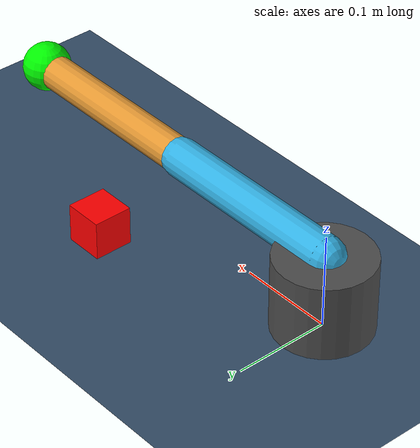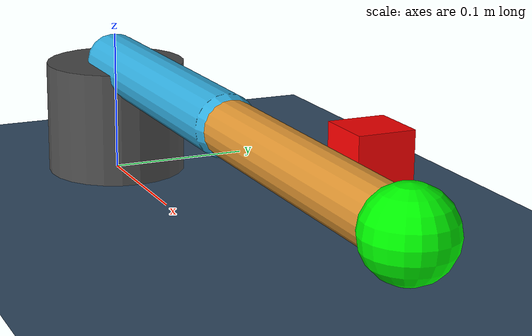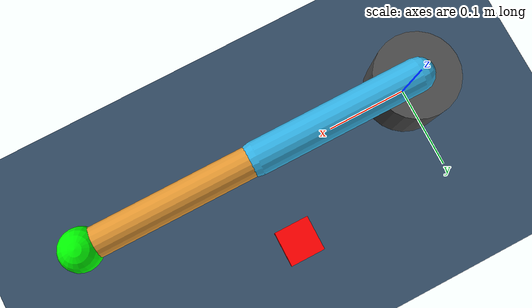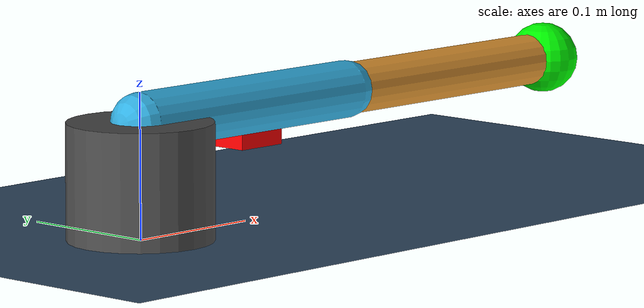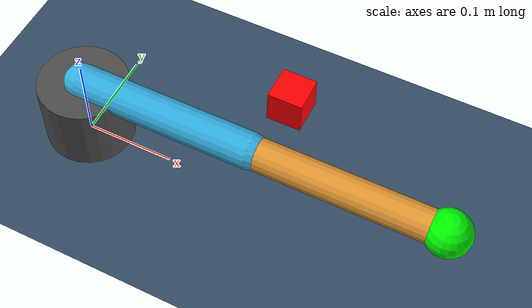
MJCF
<mujoco model="simple_reacher">
  <compiler angle="radian"/>
  <option gravity="0 0 -9.81" timestep="0.005"/>

  <visual>
    <headlight ambient="0.4 0.4 0.4" diffuse="0.8 0.8 0.8" specular="0.1 0.1 0.1"/>
  </visual>

  <worldbody>
    <light pos="0 0 2" dir="0 0 -1"/>

    <!-- พื้นตาราง -->
    <geom name="floor" type="plane" size="1 1 0.1" rgba="0.2 0.3 0.4 1" condim="3"/>

    <!-- กล่องเป้าหมาย (สีแดง) -->
    <body name="target" pos="0.2 0.1 0.05">
      <geom type="box" size="0.02 0.02 0.02" rgba="1 0 0 1" contype="0" conaffinity="0"/>
    </body>

    <!-- ฐานหุ่นยนต์ -->
    <body name="base" pos="0 0 0">
      <geom type="cylinder" size="0.05 0.04" pos="0 0 0.04" rgba="0.3 0.3 0.3 1"/>
      <!-- เพิ่ม damping=0.5 เพื่อลดแรงสั่นสะสม -->
      <joint name="joint_base" type="hinge" axis="0 0 1" pos="0 0 0" damping="2.0"/>

      <!-- ท่อนแขนที่ 1 (Upper Arm) -->
      <body name="link1" pos="0 0 0.08">
        <joint name="joint_shoulder" type="hinge" axis="0 -1 0" pos="0 0 0" range="-0.2 1.57" damping="2.0"/>
        <geom type="capsule" fromto="0 0 0 0.2 0 0" size="0.02" rgba="0.2 0.7 0.9 1"/>

        <!-- ท่อนแขนที่ 2 (Forearm) -->
        <body name="link2" pos="0.2 0 0">
          <joint name="joint_elbow" type="hinge" axis="0 -1 0" pos="0 0 0" range="-2.2 0.0" damping="2.0"/>
          <geom type="capsule" fromto="0 0 0 0.2 0 0" size="0.018" rgba="0.9 0.6 0.2 1"/>

          <!-- ปลายแขนสีเขียว -->
          <site name="tip" type="sphere" pos="0.21 0 0" size="0.025" rgba="0 1 0 1"/>
        </body>
      </body>
    </body>
  </worldbody>

  <!-- ปรับ kp จาก 200 เหลือ 50 และใส่ ctrlrange ให้ตรงกับขอบเขตองศา -->
  <actuator>
    <position name="act_base" joint="joint_base" kp="50" ctrlrange="-3.14 3.14"/>
    <position name="act_shoulder" joint="joint_shoulder" kp="50" ctrlrange="-0.2 1.57"/>
    <position name="act_elbow" joint="joint_elbow" kp="50" ctrlrange="-2.2 0.0"/>
  </actuator>
</mujoco>
